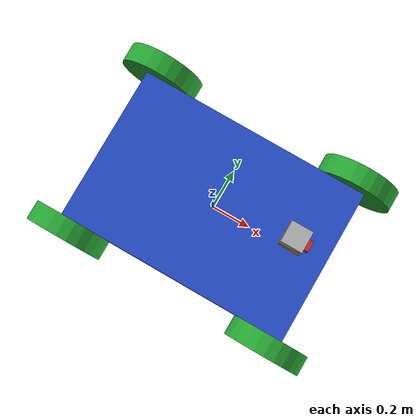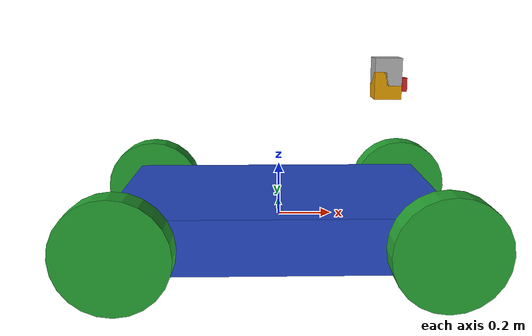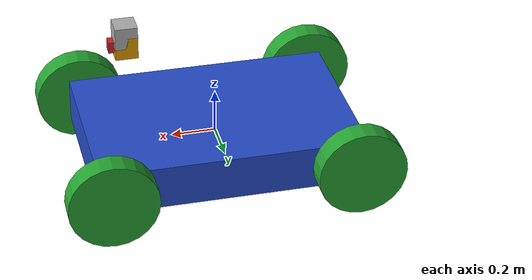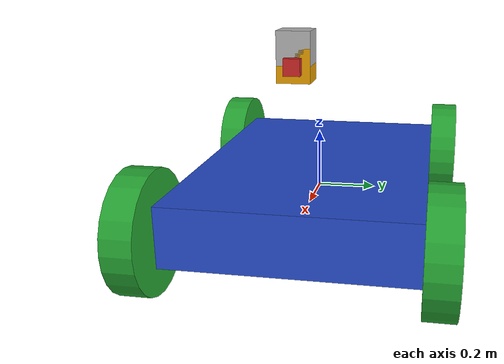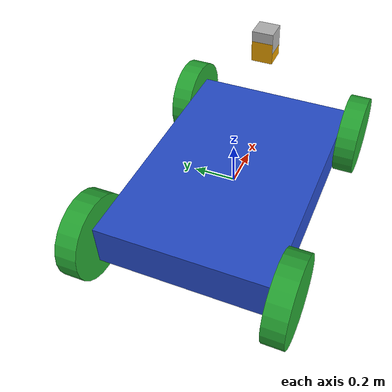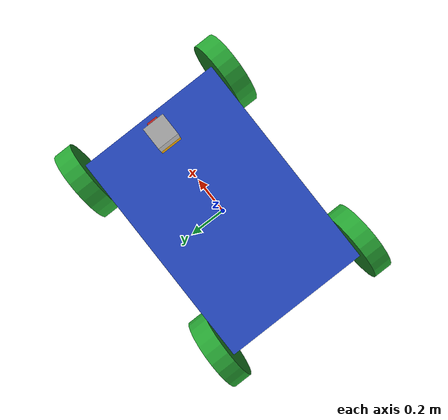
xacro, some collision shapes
<?xml version='1.0'?>

<robot name="my_robot" xmlns:xacro="http://www.ros.org/wiki/xacro">

<xacro:include filename="$(find my_robot)/urdf/my_robot.gazebo" />

  <link name="robot_footprint"></link>

  <joint name="robot_footprint_joint" type="fixed">
    <origin xyz="0 0 0" rpy="0 0 0" />
    <parent link="robot_footprint"/>
    <child link="chassis" />
  </joint>

  <joint type="continuous" name="front_left_wheel_hinge">
    <origin xyz="0.55 0.45 0" rpy="0 0 0"/>
    <child link="front_left_wheel"/>
    <parent link="chassis"/>
    <axis xyz="0 1 0" rpy="0 0 0"/>
    <limit effort="10000" velocity="1000"/>
    <dynamics damping="1.0" friction="1.0"/>
  </joint>

  <joint type="continuous" name="front_right_wheel_hinge">
    <origin xyz="0.55 -0.45 0" rpy="0 0 0"/>
    <child link="front_right_wheel"/>
    <parent link="chassis"/>
    <axis xyz="0 1 0" rpy="0 0 0"/>
    <limit effort="10000" velocity="1000"/>
    <dynamics damping="1.0" friction="1.0"/>
  </joint>

  <joint type="continuous" name="rear_left_wheel_hinge">
    <origin xyz="-0.55 0.45 0" rpy="0 0 0"/>
    <child link="rear_left_wheel"/>
    <parent link="chassis"/>
    <axis xyz="0 1 0" rpy="0 0 0"/>
    <limit effort="10000" velocity="1000"/>
    <dynamics damping="1.0" friction="1.0"/>
  </joint>

  <joint type="continuous" name="rear_right_wheel_hinge">
    <origin xyz="-0.55 -0.45 0" rpy="0 0 0"/>
    <child link="rear_right_wheel"/>
    <parent link="chassis"/>
    <axis xyz="0 1 0" rpy="0 0 0"/>
    <limit effort="10000" velocity="1000"/>
    <dynamics damping="1.0" friction="1.0"/>
  </joint>

  <joint type="fixed" name="sensor_box_joint">
    <origin xyz="0.4 0 0.5" rpy="0 0 0"/>
    <child link="sensor_box"/>
    <parent link="chassis"/>
    <axis xyz="0.9 0 0.5" rpy="0 0 0"/>
    <limit effort="1000" velocity="1000"/>
    <dynamics damping="1.0" friction="1.0"/>
  </joint>

  <joint type="fixed" name="camera_joint">
    <origin xyz="0.05 0 0" rpy="0 0 0"/>
    <child link="camera"/>
    <parent link="sensor_box"/>
    <axis xyz="0 1 0" rpy="0 0 0"/>
    <limit effort="10000" velocity="1000"/>
    <dynamics damping="1.0" friction="1.0"/>
  </joint>

  <joint type="fixed" name="hokuyo_joint">
    <origin xyz="0 0 0.05" rpy="0 0 0"/>
    <child link="hokuyo"/>
    <parent link="sensor_box"/>
    <axis xyz="0 1 0" rpy="0 0 0"/>
    <limit effort="10000" velocity="1000"/>
    <dynamics damping="1.0" friction="1.0"/>
  </joint>

  <link name='chassis'>
    <pose>0 0 0.1 0 0 0</pose>

    <inertial>
      <mass value="15.0"/>
      <origin xyz="0.0 0 0" rpy=" 0 0 0"/>
      <inertia
          ixx="0.1" ixy="0" ixz="0"
          iyy="0.1" iyz="0"
          izz="0.1"
      />
    </inertial>

    <collision name='chassis_collision'>
      <origin xyz="0 0 0" rpy=" 0 0 0"/>
      <geometry>
        <box size="1.2 .8 .2"/>
      </geometry>
    </collision>

    <visual name='chassis_visual'>
      <origin xyz="0 0 0" rpy=" 0 0 0"/>
      <geometry>
        <box size="1.2 .8 .2"/>
      </geometry>
    </visual>

  </link>

  <link name = "front_left_wheel">

    <inertial>
      <mass value="5.0"/>
      <origin xyz="0.0 0 0" rpy=" 0 0 0"/>
      <inertia
          ixx="0.1" ixy="0" ixz="0"
          iyy="0.1" iyz="0"
          izz="0.1"
      />
    </inertial>

    <collision name='front_left_wheel_collision'>
      <origin xyz="0 0 0" rpy=" 0 1.5707 1.5707"/>
      <geometry>
        <cylinder radius =".2" length =".1"/>
      </geometry>
    </collision>

    <visual name='front_left_wheel_visual'>
      <origin xyz="0 0 0" rpy=" 0 1.5707 1.5707"/>
      <geometry>
        <cylinder radius =".2" length =".1"/>
      </geometry>
    </visual>

  </link>

  <link name = "front_right_wheel">

    <inertial>
      <mass value="5.0"/>
      <origin xyz="0.0 0 0" rpy=" 0 0 0"/>
      <inertia
          ixx="0.1" ixy="0" ixz="0"
          iyy="0.1" iyz="0"
          izz="0.1"
      />
    </inertial>

    <collision name='front_right_wheel_collision'>
      <origin xyz="0 0 0" rpy=" 0 1.5707 1.5707"/>
      <geometry>
        <cylinder radius =".2" length =".1"/>
      </geometry>
    </collision>

    <visual name='front_right_wheel_visual'>
      <origin xyz="0 0 0" rpy=" 0 1.5707 1.5707"/>
      <geometry>
        <cylinder radius =".2" length =".1"/>
      </geometry>
    </visual>

  </link>

  <link name = "rear_left_wheel">

    <inertial>
      <mass value="5.0"/>
      <origin xyz="0.0 0 0" rpy=" 0 0 0"/>
      <inertia
          ixx="0.1" ixy="0" ixz="0"
          iyy="0.1" iyz="0"
          izz="0.1"
      />
    </inertial>

    <collision name='rear_left_wheel_collision'>
      <origin xyz="0 0 0" rpy=" 0 1.5707 1.5707"/>
      <geometry>
        <cylinder radius =".2" length =".1"/>
      </geometry>
    </collision>

    <visual name='rear_left_wheel_visual'>
      <origin xyz="0 0 0" rpy=" 0 1.5707 1.5707"/>
      <geometry>
        <cylinder radius =".2" length =".1"/>
      </geometry>
    </visual>

  </link>

  <link name = "rear_right_wheel">

    <inertial>
      <mass value="5.0"/>
      <origin xyz="0.0 0 0" rpy=" 0 0 0"/>
      <inertia
          ixx="0.1" ixy="0" ixz="0"
          iyy="0.1" iyz="0"
          izz="0.1"
      />
    </inertial>

    <collision name='rear_right_wheel_collision'>
      <origin xyz="0 0 0" rpy=" 0 1.5707 1.5707"/>
      <geometry>
        <cylinder radius =".2" length =".1"/>
      </geometry>
    </collision>

    <visual name='rear_right_wheel_visual'>
      <origin xyz="0 0 0" rpy=" 0 1.5707 1.5707"/>
      <geometry>
        <cylinder radius =".2" length =".1"/>
      </geometry>
    </visual>

  </link>

  <link name="camera">

    <inertial>
      <mass value="0.1"/>
      <inertia
          ixx="1e-6" ixy="0" ixz="0"
          iyy="1e-6" iyz="0"
          izz="1e-6"
      />
    </inertial>

    <collision name='camera_collision'>
      <geometry>
        <box size="0.05 0.05 0.05"/>
      </geometry>
    </collision>

    <visual name='camera_visual'>
      <geometry>
        <box size="0.05 0.05 0.05"/>
      </geometry>
    </visual>

    <box_inertia sizeX="0.05" sizeY="0.05" sizeZ="0.05" mass="0.1">
    </box_inertia>

  </link>

  <link name="hokuyo">

    <inertial>
      <mass value="1e-5"/>
      <inertia
          ixx="1e-6" ixy="0" ixz="0"
          iyy="1e-6" iyz="0"
          izz="1e-6"
      />
    </inertial>

    <collision name='hokuyo_collision'>
      <geometry>
        <box size="0.1 0.1 0.1"/>
      </geometry>
    </collision>

    <visual name='hokuyo_visual'>
      <geometry>
        <mesh filename="package://my_robot/meshes/hokuyo.dae" />
      </geometry>
    </visual>

  </link>

  <link name='sensor_box'>

    <inertial>
      <mass value="1.0"/>
      <origin xyz="0.0 0 0" rpy=" 0 0 0"/>
      <inertia
          ixx="0.1" ixy="0" ixz="0"
          iyy="0.1" iyz="0"
          izz="0.1"
      />
    </inertial>

    <collision name='sensor_box_collision'>
      <origin xyz="0 0 0" rpy=" 0 0 0"/>
      <geometry>
        <box size=".1 .1 .1"/>
      </geometry>
    </collision>

    <visual name='sensor_box_visual'>
      <origin xyz="0 0 0" rpy=" 0 0 0"/>
      <geometry>
        <box size=".1 .1 .1"/>
      </geometry>
    </visual>

  </link>

  <gazebo reference="front_left_wheel"> <material>Gazebo/Green</material> </gazebo>
  <gazebo reference="front_right_wheel"> <material>Gazebo/Green</material> </gazebo>
  <gazebo reference="rear_left_wheel"> <material>Gazebo/Green</material> </gazebo>
  <gazebo reference="rear_right_wheel"> <material>Gazebo/Green</material> </gazebo>
  <gazebo reference="chassis"> <material>Gazebo/Blue</material> </gazebo>
  <gazebo reference="camera"> <material>Gazebo/Red</material> </gazebo>

</robot>
